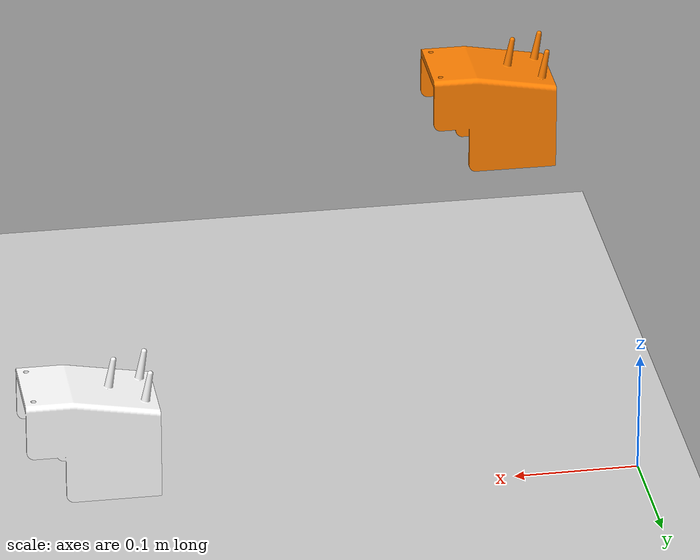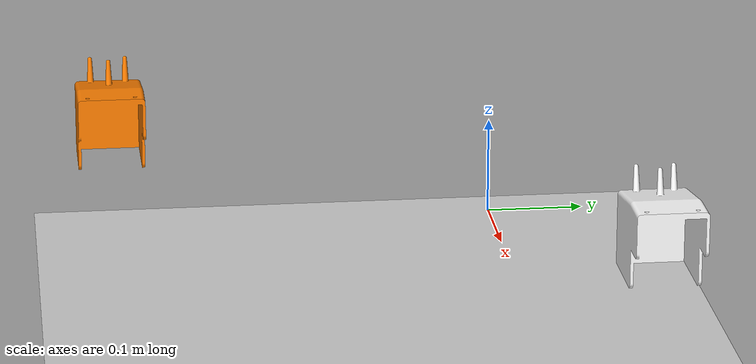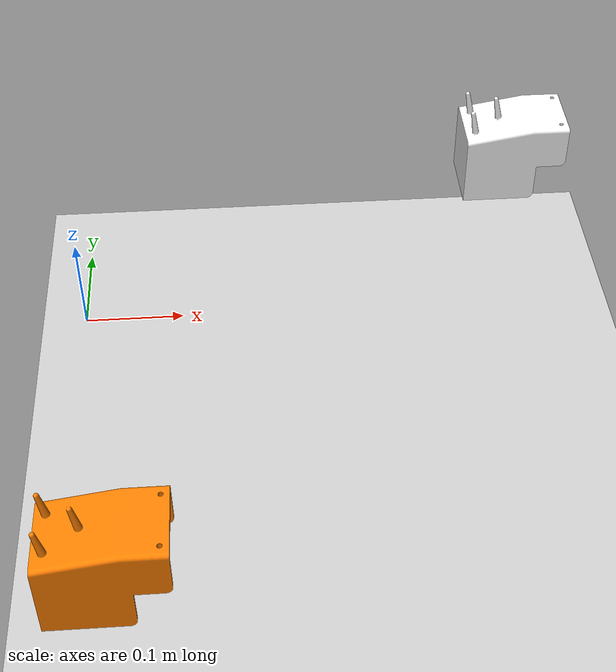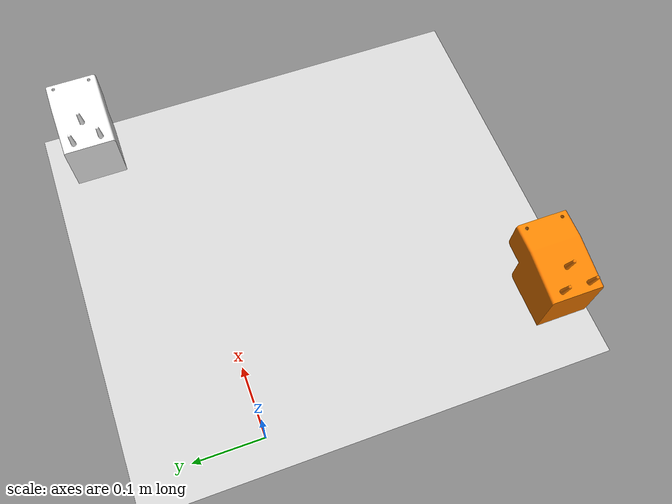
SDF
<sdf version="1.6">
  <world name="empty">
    <physics name="1ms" type="ignored">
      <max_step_size>0.001</max_step_size>
      <real_time_factor>1.0</real_time_factor>
    </physics>
    <plugin
      filename="gz-sim-physics-system"
      name="gz::sim::systems::Physics">
    </plugin>
    <plugin
      filename="gz-sim-user-commands-system"
      name="gz::sim::systems::UserCommands">
    </plugin>
    <plugin
      filename="gz-sim-scene-broadcaster-system"
      name="gz::sim::systems::SceneBroadcaster">
    </plugin>
    <plugin
      filename="gz-sim-sensors-system"
      name="gz::sim::systems::Sensors">
      <render_engine>ogre2</render_engine>
    </plugin>
    <plugin
      filename="gz-sim-contact-system"
      name="gz::sim::systems::Contact">
    </plugin>

    <light type="directional" name="sun">
      <cast_shadows>true</cast_shadows>
      <pose>0 0 10 0 0 0</pose>
      <diffuse>0.8 0.8 0.8 1</diffuse>
      <specular>0.2 0.2 0.2 1</specular>
      <attenuation>
        <range>1000</range>
        <constant>0.9</constant>
        <linear>0.01</linear>
        <quadratic>0.001</quadratic>
      </attenuation>
      <direction>-0.5 0.1 -0.9</direction>
    </light>

    <model name="ground_plane">
      <static>true</static>
      <link name="link">
        <collision name="collision">
          <geometry>
            <plane>
              <normal>0 0 1</normal>
              <size>100 100</size>
            </plane>
          </geometry>
        </collision>
        <visual name="visual">
          <geometry>
            <plane>
              <normal>0 0 1</normal>
              <size>100 100</size>
            </plane>
          </geometry>
          <material>
            <ambient>0.8 0.8 0.8 1</ambient>
            <diffuse>0.8 0.8 0.8 1</diffuse>
            <specular>0.8 0.8 0.8 1</specular>
          </material>
        </visual>
      </link>
    </model>

    <model name="wheel_holder_model">
      <static>false</static>
      <pose>0.4 0.1 0.085 0 0 0</pose>
      <link name="wheel_holder_link">

        <gravity>false</gravity>

        <collision name="collision">
          <geometry>
            <mesh>
              <uri>file:///home/alan/Moveit2/ar4_mk_5_ws/src/vision_yolo_depth/model/wheel-holder-no.stl</uri>
              <scale>0.001 0.001 0.001</scale>
            </mesh>
          </geometry>
        </collision>

        <visual name="visual">
          <geometry>
            <mesh>
              <uri>file:///home/alan/Moveit2/ar4_mk_5_ws/src/vision_yolo_depth/model/wheel-holder-no.stl</uri>
              <scale>0.001 0.001 0.001</scale>
            </mesh>
          </geometry>
          <material>
            <ambient>1 1 1 1</ambient>
            <diffuse>1 1 1 1</diffuse>
            <specular>0.2 0.2 0.2 1</specular>
          </material>
        </visual>

        <inertial>
          <mass>0.5</mass> <inertia>
            <ixx>0.001</ixx>
            <ixy>0.0</ixy>
            <ixz>0.0</ixz>
            <iyy>0.001</iyy>
            <iyz>0.0</iyz>
            <izz>0.001</izz>
          </inertia>
        </inertial>
      </link>
    </model>

    <model name="wheel_holder_model_two">
      <static>false</static>
      <pose>0.0 -0.40 0.085 0 0 0</pose>
      <link name="wheel_holder_link_two">

        <gravity>false</gravity>

        <collision name="collision">
          <geometry>
            <mesh>
              <uri>file:///home/alan/Moveit2/ar4_mk_5_ws/src/vision_yolo_depth/model/wheel-holder-no.stl</uri>
              <scale>0.001 0.001 0.001</scale>
            </mesh>
          </geometry>
        </collision>

        <visual name="visual">
          <geometry>
            <mesh>
              <uri>file:///home/alan/Moveit2/ar4_mk_5_ws/src/vision_yolo_depth/model/wheel-holder-no.stl</uri>
              <scale>0.001 0.001 0.001</scale>
            </mesh>
          </geometry>
          <material>
            <ambient>1.0 0.5 0.0 1</ambient>
            <diffuse>1.0 0.5 0.0 1</diffuse>
            <specular>0.5 0.5 0.5 1</specular>
          </material>
        </visual>

        <inertial>
          <mass>0.5</mass> <inertia>
            <ixx>0.001</ixx>
            <ixy>0.0</ixy>
            <ixz>0.0</ixz>
            <iyy>0.001</iyy>
            <iyz>0.0</iyz>
            <izz>0.001</izz>
          </inertia>
        </inertial>
      </link>
    </model>
  </world>
</sdf>
